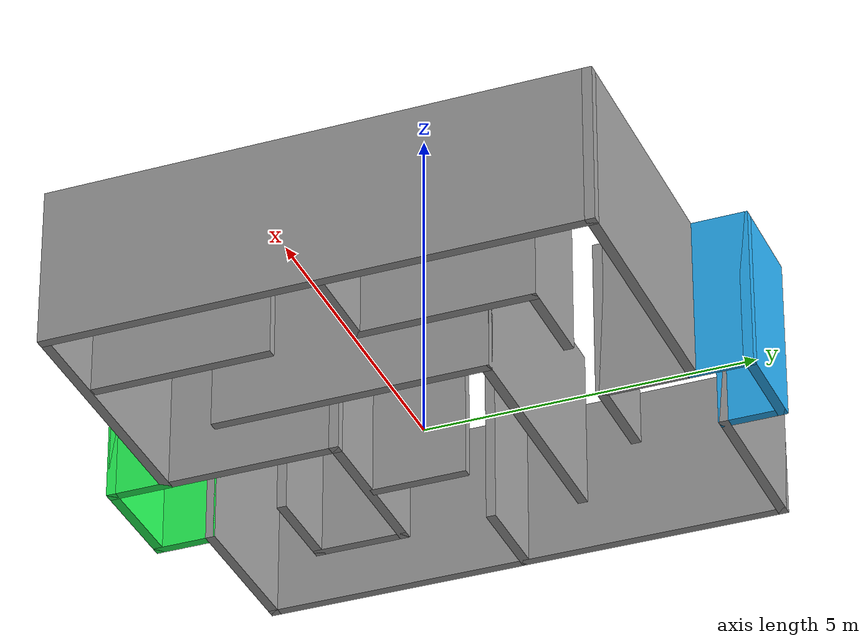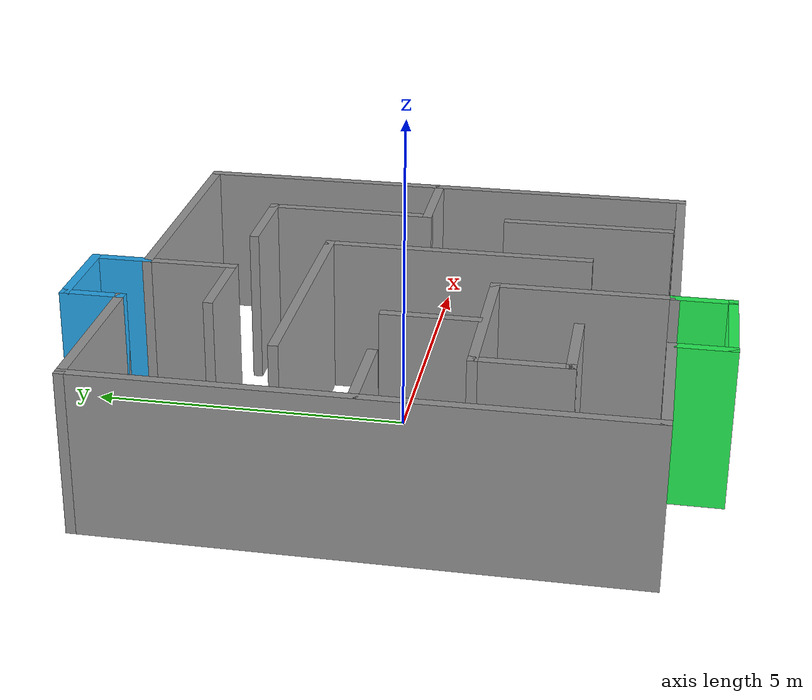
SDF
<?xml version='1.0'?>
<sdf version='1.7'>
  <model name='Enclosed_Maze_2'>
    <pose>0.015589 -0.005104 0 0 -0 0</pose>
    <link name='Wall_100'>
      <collision name='Wall_100_Collision'>
        <geometry>
          <box>
            <size>8.25 0.15 2.5</size>
          </box>
        </geometry>
        <pose>0 0 1.25 0 -0 0</pose>
      </collision>
      <visual name='Wall_100_Visual'>
        <pose>0 0 1.25 0 -0 0</pose>
        <geometry>
          <box>
            <size>8.25 0.15 2.5</size>
          </box>
        </geometry>
        <material>
          <script>
            <uri>file://media/materials/scripts/gazebo.material</uri>
            <name>Gazebo/Grey</name>
          </script>
          <ambient>1 1 1 1</ambient>
        </material>
        <meta>
          <layer>0</layer>
        </meta>
      </visual>
      <pose>-4.05 -0 0 0 -0 -1.5708</pose>
    </link>
    <link name='Wall_102'>
      <collision name='Wall_102_Collision'>
        <geometry>
          <box>
            <size>8.25 0.15 2.5</size>
          </box>
        </geometry>
        <pose>0 0 1.25 0 -0 0</pose>
      </collision>
      <visual name='Wall_102_Visual'>
        <pose>0 0 1.25 0 -0 0</pose>
        <geometry>
          <box>
            <size>8.25 0.15 2.5</size>
          </box>
        </geometry>
        <material>
          <script>
            <uri>file://media/materials/scripts/gazebo.material</uri>
            <name>Gazebo/Grey</name>
          </script>
          <ambient>1 1 1 1</ambient>
        </material>
        <meta>
          <layer>0</layer>
        </meta>
      </visual>
      <pose>4.05 -0 0 0 -0 1.5708</pose>
    </link>
    <link name='Wall_103'>
      <collision name='Wall_103_Collision'>
        <geometry>
          <box>
            <size>4.25 0.15 2.5</size>
          </box>
        </geometry>
        <pose>0 0 1.25 0 -0 0</pose>
      </collision>
      <visual name='Wall_103_Visual'>
        <pose>0 0 1.25 0 -0 0</pose>
        <geometry>
          <box>
            <size>4.25 0.15 2.5</size>
          </box>
        </geometry>
        <material>
          <script>
            <uri>file://media/materials/scripts/gazebo.material</uri>
            <name>Gazebo/Grey</name>
          </script>
          <ambient>1 1 1 1</ambient>
        </material>
        <meta>
          <layer>0</layer>
        </meta>
      </visual>
      <pose>2 4.05 0 0 -0 3.14159</pose>
    </link>
    <link name='Wall_104'>
      <collision name='Wall_104_Collision'>
        <geometry>
          <box>
            <size>1.5 0.15 2.5</size>
          </box>
        </geometry>
        <pose>0 0 1.25 0 -0 0</pose>
      </collision>
      <visual name='Wall_104_Visual'>
        <pose>0 0 1.25 0 -0 0</pose>
        <geometry>
          <box>
            <size>1.5 0.15 2.5</size>
          </box>
        </geometry>
        <material>
          <script>
            <uri>file://media/materials/scripts/gazebo.material</uri>
            <name>Gazebo/Grey</name>
          </script>
          <ambient>1 1 1 1</ambient>
        </material>
        <meta>
          <layer>0</layer>
        </meta>
      </visual>
      <pose>-0.05 3.375 0 0 -0 -1.5708</pose>
    </link>
    <link name='Wall_105'>
      <collision name='Wall_105_Collision'>
        <geometry>
          <box>
            <size>1.5 0.15 2.5</size>
          </box>
        </geometry>
        <pose>0 0 1.25 0 -0 0</pose>
      </collision>
      <visual name='Wall_105_Visual'>
        <pose>0 0 1.25 0 -0 0</pose>
        <geometry>
          <box>
            <size>1.5 0.15 2.5</size>
          </box>
        </geometry>
        <material>
          <script>
            <uri>file://media/materials/scripts/gazebo.material</uri>
            <name>Gazebo/Grey</name>
          </script>
          <ambient>1 1 1 1</ambient>
        </material>
        <meta>
          <layer>0</layer>
        </meta>
      </visual>
      <pose>-0.725 2.7 0 0 -0 3.14159</pose>
    </link>
    <link name='Wall_107'>
      <collision name='Wall_107_Collision'>
        <geometry>
          <box>
            <size>2.75 0.15 2.5</size>
          </box>
        </geometry>
        <pose>0 0 1.25 0 -0 0</pose>
      </collision>
      <visual name='Wall_107_Visual'>
        <pose>0 0 1.25 0 -0 0</pose>
        <geometry>
          <box>
            <size>2.75 0.15 2.5</size>
          </box>
        </geometry>
        <material>
          <script>
            <uri>file://media/materials/scripts/gazebo.material</uri>
            <name>Gazebo/Grey</name>
          </script>
          <ambient>1 1 1 1</ambient>
        </material>
        <meta>
          <layer>0</layer>
        </meta>
      </visual>
      <pose>-2.75 4.05 0 0 -0 0</pose>
    </link>
    <link name='Wall_108'>
      <collision name='Wall_108_Collision'>
        <geometry>
          <box>
            <size>1 0.15 2.5</size>
          </box>
        </geometry>
        <pose>0 0 1.25 0 -0 0</pose>
      </collision>
      <visual name='Wall_108_Visual'>
        <pose>0 0 1.25 0 -0 0</pose>
        <geometry>
          <box>
            <size>1 0.15 2.5</size>
          </box>
        </geometry>
        <material>
          <script>
            <uri>file://media/materials/scripts/gazebo.material</uri>
            <name>Gazebo/Grey</name>
          </script>
          <ambient>0.152941 0.67451 0.945098 1</ambient>
        </material>
        <meta>
          <layer>0</layer>
        </meta>
      </visual>
      <pose>-1.45 4.475 0 0 -0 1.5708</pose>
    </link>
    <link name='Wall_110'>
      <collision name='Wall_110_Collision'>
        <geometry>
          <box>
            <size>1 0.15 2.5</size>
          </box>
        </geometry>
        <pose>0 0 1.25 0 -0 0</pose>
      </collision>
      <visual name='Wall_110_Visual'>
        <pose>0 0 1.25 0 -0 0</pose>
        <geometry>
          <box>
            <size>1 0.15 2.5</size>
          </box>
        </geometry>
        <material>
          <script>
            <uri>file://media/materials/scripts/gazebo.material</uri>
            <name>Gazebo/Grey</name>
          </script>
          <ambient>0.152941 0.67451 0.945098 1</ambient>
        </material>
        <meta>
          <layer>0</layer>
        </meta>
      </visual>
      <pose>-0.05 4.475 0 0 -0 1.5708</pose>
    </link>
    <link name='Wall_111'>
      <collision name='Wall_111_Collision'>
        <geometry>
          <box>
            <size>1.55 0.15 2.5</size>
          </box>
        </geometry>
        <pose>0 0 1.25 0 -0 0</pose>
      </collision>
      <visual name='Wall_111_Visual'>
        <pose>0 0 1.25 0 -0 0</pose>
        <geometry>
          <box>
            <size>1.55 0.15 2.5</size>
          </box>
        </geometry>
        <material>
          <script>
            <uri>file://media/materials/scripts/gazebo.material</uri>
            <name>Gazebo/Grey</name>
          </script>
          <ambient>0.152941 0.67451 0.945098 1</ambient>
        </material>
        <meta>
          <layer>0</layer>
        </meta>
      </visual>
      <pose>-0.75 4.9 0 0 -0 3.14159</pose>
    </link>
    <link name='Wall_114'>
      <collision name='Wall_114_Collision'>
        <geometry>
          <box>
            <size>4 0.15 2.5</size>
          </box>
        </geometry>
        <pose>0 0 1.25 0 -0 0</pose>
      </collision>
      <visual name='Wall_114_Visual'>
        <pose>0 0 1.25 0 -0 0</pose>
        <geometry>
          <box>
            <size>4 0.15 2.5</size>
          </box>
        </geometry>
        <material>
          <script>
            <uri>file://media/materials/scripts/gazebo.material</uri>
            <name>Gazebo/Grey</name>
          </script>
          <ambient>1 1 1 1</ambient>
        </material>
        <meta>
          <layer>0</layer>
        </meta>
      </visual>
      <pose>-0.743285 1.41502 0 0 -0 0</pose>
    </link>
    <link name='Wall_115'>
      <collision name='Wall_115_Collision'>
        <geometry>
          <box>
            <size>4.25 0.15 2.5</size>
          </box>
        </geometry>
        <pose>0 0 1.25 0 -0 0</pose>
      </collision>
      <visual name='Wall_115_Visual'>
        <pose>0 0 1.25 0 -0 0</pose>
        <geometry>
          <box>
            <size>4.25 0.15 2.5</size>
          </box>
        </geometry>
        <material>
          <script>
            <uri>file://media/materials/scripts/gazebo.material</uri>
            <name>Gazebo/Grey</name>
          </script>
          <ambient>1 1 1 1</ambient>
        </material>
        <meta>
          <layer>0</layer>
        </meta>
      </visual>
      <pose>1.18172 -0.63498 0 0 -0 -1.5708</pose>
    </link>
    <link name='Wall_117'>
      <collision name='Wall_117_Collision'>
        <geometry>
          <box>
            <size>1.5 0.15 2.5</size>
          </box>
        </geometry>
        <pose>0 0 1.25 0 -0 0</pose>
      </collision>
      <visual name='Wall_117_Visual'>
        <pose>0 0 1.25 0 -0 0</pose>
        <geometry>
          <box>
            <size>1.5 0.15 2.5</size>
          </box>
        </geometry>
        <material>
          <script>
            <uri>file://media/materials/scripts/gazebo.material</uri>
            <name>Gazebo/Grey</name>
          </script>
          <ambient>1 1 1 1</ambient>
        </material>
        <meta>
          <layer>0</layer>
        </meta>
      </visual>
      <pose>1.95947 2.66829 0 0 -0 0</pose>
    </link>
    <link name='Wall_118'>
      <collision name='Wall_118_Collision'>
        <geometry>
          <box>
            <size>2.75 0.15 2.5</size>
          </box>
        </geometry>
        <pose>0 0 1.25 0 -0 0</pose>
      </collision>
      <visual name='Wall_118_Visual'>
        <pose>0 0 1.25 0 -0 0</pose>
        <geometry>
          <box>
            <size>2.75 0.15 2.5</size>
          </box>
        </geometry>
        <material>
          <script>
            <uri>file://media/materials/scripts/gazebo.material</uri>
            <name>Gazebo/Grey</name>
          </script>
          <ambient>1 1 1 1</ambient>
        </material>
        <meta>
          <layer>0</layer>
        </meta>
      </visual>
      <pose>2.63447 1.36828 0 0 -0 -1.5708</pose>
    </link>
    <link name='Wall_119'>
      <collision name='Wall_119_Collision'>
        <geometry>
          <box>
            <size>1.5 0.15 2.5</size>
          </box>
        </geometry>
        <pose>0 0 1.25 0 -0 0</pose>
      </collision>
      <visual name='Wall_119_Visual'>
        <pose>0 0 1.25 0 -0 0</pose>
        <geometry>
          <box>
            <size>1.5 0.15 2.5</size>
          </box>
        </geometry>
        <material>
          <script>
            <uri>file://media/materials/scripts/gazebo.material</uri>
            <name>Gazebo/Grey</name>
          </script>
          <ambient>1 1 1 1</ambient>
        </material>
        <meta>
          <layer>0</layer>
        </meta>
      </visual>
      <pose>3.30947 0.068285 0 0 -0 0</pose>
    </link>
    <link name='Wall_121'>
      <collision name='Wall_121_Collision'>
        <geometry>
          <box>
            <size>2.75 0.15 2.5</size>
          </box>
        </geometry>
        <pose>0 0 1.25 0 -0 0</pose>
      </collision>
      <visual name='Wall_121_Visual'>
        <pose>0 0 1.25 0 -0 0</pose>
        <geometry>
          <box>
            <size>2.75 0.15 2.5</size>
          </box>
        </geometry>
        <material>
          <script>
            <uri>file://media/materials/scripts/gazebo.material</uri>
            <name>Gazebo/Grey</name>
          </script>
          <ambient>1 1 1 1</ambient>
        </material>
        <meta>
          <layer>0</layer>
        </meta>
      </visual>
      <pose>2.64869 -2.58447 0 0 -0 -1.5708</pose>
    </link>
    <link name='Wall_124'>
      <collision name='Wall_124_Collision'>
        <geometry>
          <box>
            <size>2.75 0.15 2.5</size>
          </box>
        </geometry>
        <pose>0 0 1.25 0 -0 0</pose>
      </collision>
      <visual name='Wall_124_Visual'>
        <pose>0 0 1.25 0 -0 0</pose>
        <geometry>
          <box>
            <size>2.75 0.15 2.5</size>
          </box>
        </geometry>
        <material>
          <script>
            <uri>file://media/materials/scripts/gazebo.material</uri>
            <name>Gazebo/Grey</name>
          </script>
          <ambient>1 1 1 1</ambient>
        </material>
        <meta>
          <layer>0</layer>
        </meta>
      </visual>
      <pose>-0.044776 -2.67794 0 0 -0 1.5708</pose>
    </link>
    <link name='Wall_125'>
      <collision name='Wall_125_Collision'>
        <geometry>
          <box>
            <size>2.75 0.15 2.5</size>
          </box>
        </geometry>
        <pose>0 0 1.25 0 -0 0</pose>
      </collision>
      <visual name='Wall_125_Visual'>
        <pose>0 0 1.25 0 -0 0</pose>
        <geometry>
          <box>
            <size>2.75 0.15 2.5</size>
          </box>
        </geometry>
        <material>
          <script>
            <uri>file://media/materials/scripts/gazebo.material</uri>
            <name>Gazebo/Grey</name>
          </script>
          <ambient>1 1 1 1</ambient>
        </material>
        <meta>
          <layer>0</layer>
        </meta>
      </visual>
      <pose>-1.34478 -1.37794 0 0 -0 3.14159</pose>
    </link>
    <link name='Wall_126'>
      <collision name='Wall_126_Collision'>
        <geometry>
          <box>
            <size>1.5 0.15 2.5</size>
          </box>
        </geometry>
        <pose>0 0 1.25 0 -0 0</pose>
      </collision>
      <visual name='Wall_126_Visual'>
        <pose>0 0 1.25 0 -0 0</pose>
        <geometry>
          <box>
            <size>1.5 0.15 2.5</size>
          </box>
        </geometry>
        <material>
          <script>
            <uri>file://media/materials/scripts/gazebo.material</uri>
            <name>Gazebo/Grey</name>
          </script>
          <ambient>1 1 1 1</ambient>
        </material>
        <meta>
          <layer>0</layer>
        </meta>
      </visual>
      <pose>-2.64478 -2.05294 0 0 -0 -1.5708</pose>
    </link>
    <link name='Wall_127'>
      <collision name='Wall_127_Collision'>
        <geometry>
          <box>
            <size>1.5 0.15 2.5</size>
          </box>
        </geometry>
        <pose>0 0 1.25 0 -0 0</pose>
      </collision>
      <visual name='Wall_127_Visual'>
        <pose>0 0 1.25 0 -0 0</pose>
        <geometry>
          <box>
            <size>1.5 0.15 2.5</size>
          </box>
        </geometry>
        <material>
          <script>
            <uri>file://media/materials/scripts/gazebo.material</uri>
            <name>Gazebo/Grey</name>
          </script>
          <ambient>1 1 1 1</ambient>
        </material>
        <meta>
          <layer>0</layer>
        </meta>
      </visual>
      <pose>-1.96978 -2.72794 0 0 -0 0</pose>
    </link>
    <link name='Wall_129'>
      <collision name='Wall_129_Collision'>
        <geometry>
          <box>
            <size>1.5 0.15 2.5</size>
          </box>
        </geometry>
        <pose>0 0 1.25 0 -0 0</pose>
      </collision>
      <visual name='Wall_129_Visual'>
        <pose>0 0 1.25 0 -0 0</pose>
        <geometry>
          <box>
            <size>1.5 0.15 2.5</size>
          </box>
        </geometry>
        <material>
          <script>
            <uri>file://media/materials/scripts/gazebo.material</uri>
            <name>Gazebo/Grey</name>
          </script>
          <ambient>1 1 1 1</ambient>
        </material>
        <meta>
          <layer>0</layer>
        </meta>
      </visual>
      <pose>-1.33878 -0.594985 0 0 -0 -1.5708</pose>
    </link>
    <link name='Wall_131'>
      <collision name='Wall_131_Collision'>
        <geometry>
          <box>
            <size>1.5 0.15 2.5</size>
          </box>
        </geometry>
        <pose>0 0 1.25 0 -0 0</pose>
      </collision>
      <visual name='Wall_131_Visual'>
        <pose>0 0 1.25 0 -0 0</pose>
        <geometry>
          <box>
            <size>1.5 0.15 2.5</size>
          </box>
        </geometry>
        <material>
          <script>
            <uri>file://media/materials/scripts/gazebo.material</uri>
            <name>Gazebo/Grey</name>
          </script>
          <ambient>1 1 1 1</ambient>
        </material>
        <meta>
          <layer>0</layer>
        </meta>
      </visual>
      <pose>-3.34845 0.027115 0 0 -0 0</pose>
    </link>
    <link name='Wall_133'>
      <collision name='Wall_133_Collision'>
        <geometry>
          <box>
            <size>2.5 0.15 2.5</size>
          </box>
        </geometry>
        <pose>0 0 1.25 0 -0 0</pose>
      </collision>
      <visual name='Wall_133_Visual'>
        <pose>0 0 1.25 0 -0 0</pose>
        <geometry>
          <box>
            <size>2.5 0.15 2.5</size>
          </box>
        </geometry>
        <material>
          <script>
            <uri>file://media/materials/scripts/gazebo.material</uri>
            <name>Gazebo/Grey</name>
          </script>
          <ambient>1 1 1 1</ambient>
        </material>
        <meta>
          <layer>0</layer>
        </meta>
      </visual>
      <pose>-2.875 -4.05 0 0 -0 0</pose>
    </link>
    <link name='Wall_134'>
      <collision name='Wall_134_Collision'>
        <geometry>
          <box>
            <size>1 0.15 2.5</size>
          </box>
        </geometry>
        <pose>0 0 1.25 0 -0 0</pose>
      </collision>
      <visual name='Wall_134_Visual'>
        <pose>0 0 1.25 0 -0 0</pose>
        <geometry>
          <box>
            <size>1 0.15 2.5</size>
          </box>
        </geometry>
        <material>
          <script>
            <uri>file://media/materials/scripts/gazebo.material</uri>
            <name>Gazebo/Grey</name>
          </script>
          <ambient>0.145098 0.976471 0.337255 1</ambient>
        </material>
        <meta>
          <layer>0</layer>
        </meta>
      </visual>
      <pose>-1.7 -4.475 0 0 -0 -1.5708</pose>
    </link>
    <link name='Wall_136'>
      <collision name='Wall_136_Collision'>
        <geometry>
          <box>
            <size>4.25 0.15 2.5</size>
          </box>
        </geometry>
        <pose>0 0 1.25 0 -0 0</pose>
      </collision>
      <visual name='Wall_136_Visual'>
        <pose>0 0 1.25 0 -0 0</pose>
        <geometry>
          <box>
            <size>4.25 0.15 2.5</size>
          </box>
        </geometry>
        <material>
          <script>
            <uri>file://media/materials/scripts/gazebo.material</uri>
            <name>Gazebo/Grey</name>
          </script>
          <ambient>1 1 1 1</ambient>
        </material>
        <meta>
          <layer>0</layer>
        </meta>
      </visual>
      <pose>2 -4.05 0 0 -0 3.14159</pose>
    </link>
    <link name='Wall_137'>
      <collision name='Wall_137_Collision'>
        <geometry>
          <box>
            <size>1 0.15 2.5</size>
          </box>
        </geometry>
        <pose>0 0 1.25 0 -0 0</pose>
      </collision>
      <visual name='Wall_137_Visual'>
        <pose>0 0 1.25 0 -0 0</pose>
        <geometry>
          <box>
            <size>1 0.15 2.5</size>
          </box>
        </geometry>
        <material>
          <script>
            <uri>file://media/materials/scripts/gazebo.material</uri>
            <name>Gazebo/Grey</name>
          </script>
          <ambient>0.145098 0.976471 0.337255 1</ambient>
        </material>
        <meta>
          <layer>0</layer>
        </meta>
      </visual>
      <pose>-0.05 -4.475 0 0 -0 -1.5708</pose>
    </link>
    <link name='Wall_138'>
      <collision name='Wall_138_Collision'>
        <geometry>
          <box>
            <size>1.8 0.15 2.5</size>
          </box>
        </geometry>
        <pose>0 0 1.25 0 -0 0</pose>
      </collision>
      <visual name='Wall_138_Visual'>
        <pose>0 0 1.25 0 -0 0</pose>
        <geometry>
          <box>
            <size>1.8 0.15 2.5</size>
          </box>
        </geometry>
        <material>
          <script>
            <uri>file://media/materials/scripts/gazebo.material</uri>
            <name>Gazebo/Grey</name>
          </script>
          <ambient>0.145098 0.976471 0.337255 1</ambient>
        </material>
        <meta>
          <layer>0</layer>
        </meta>
      </visual>
      <pose>-0.875 -4.9 0 0 -0 3.14159</pose>
    </link>
    <static>1</static>
  </model>
</sdf>
